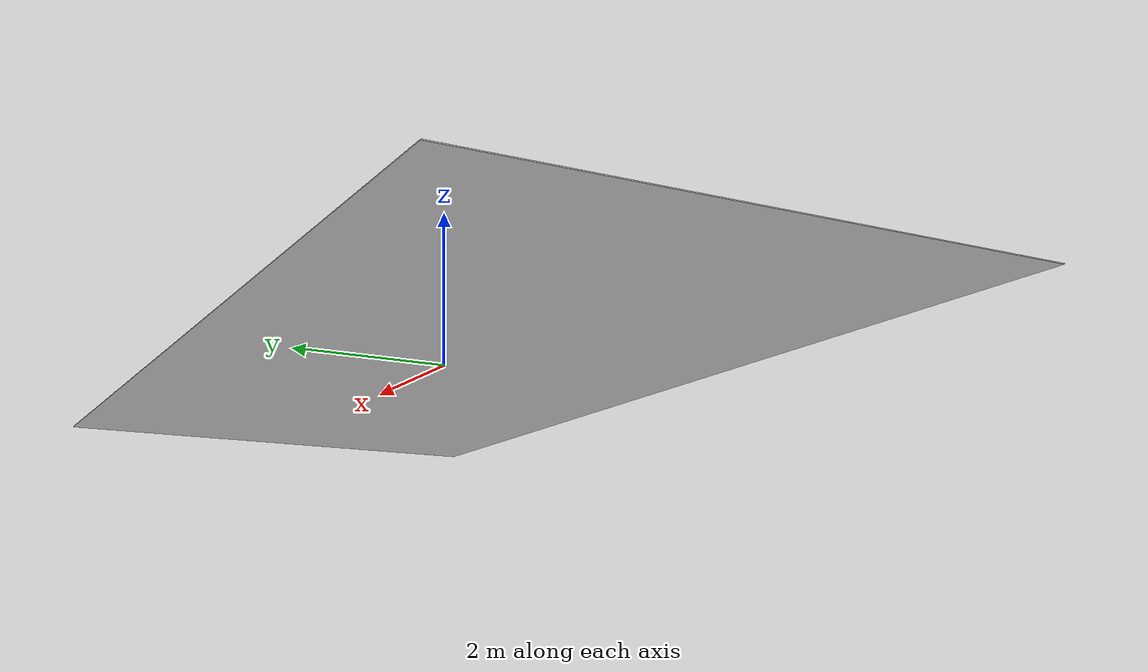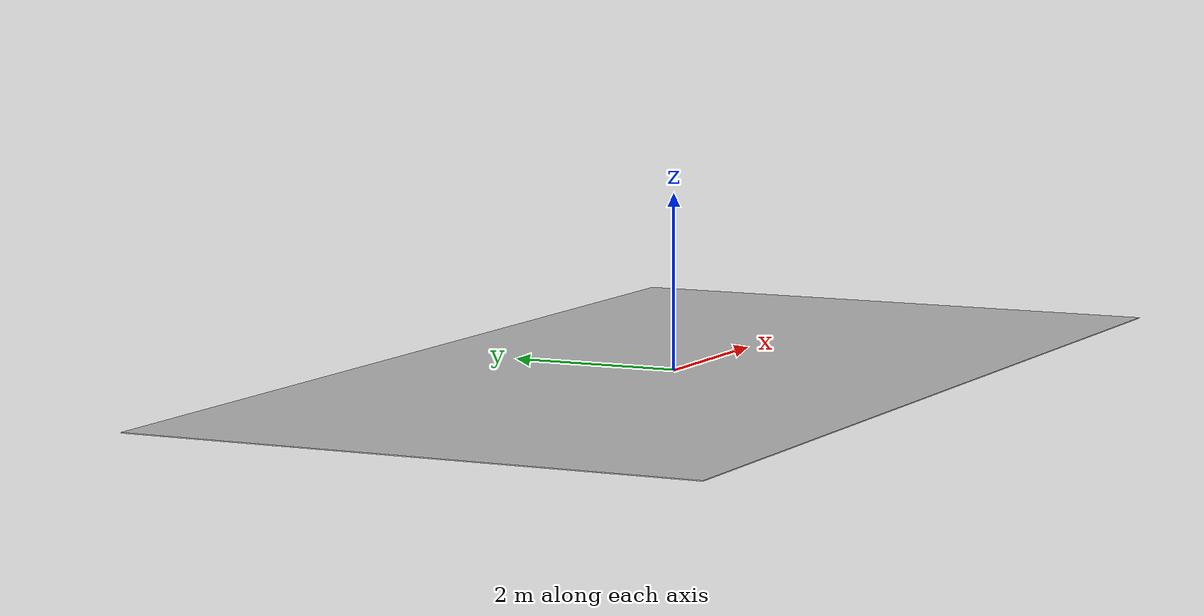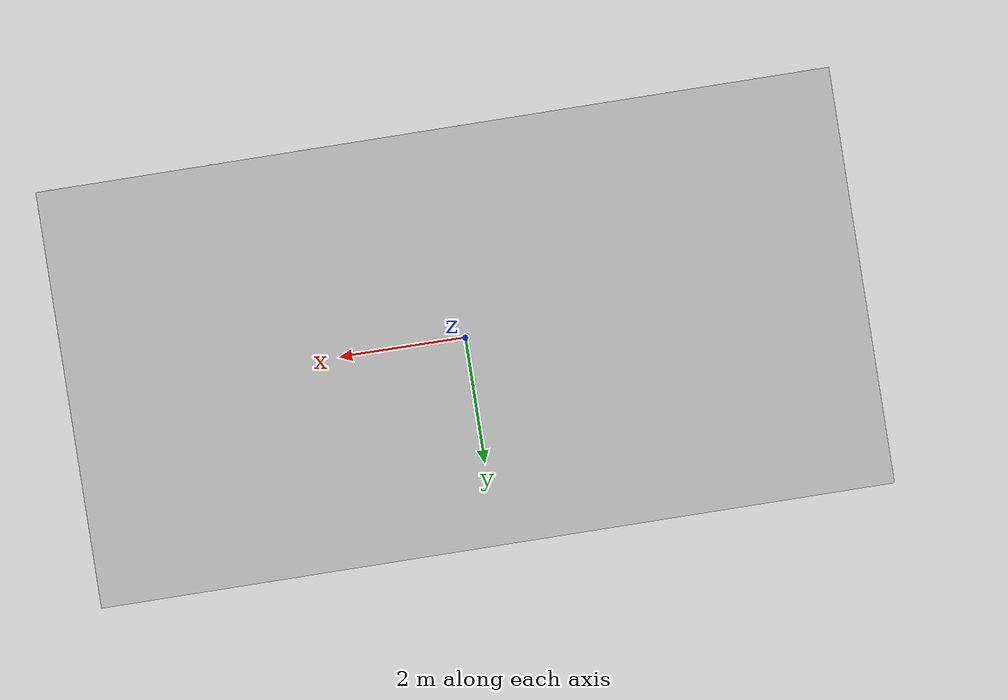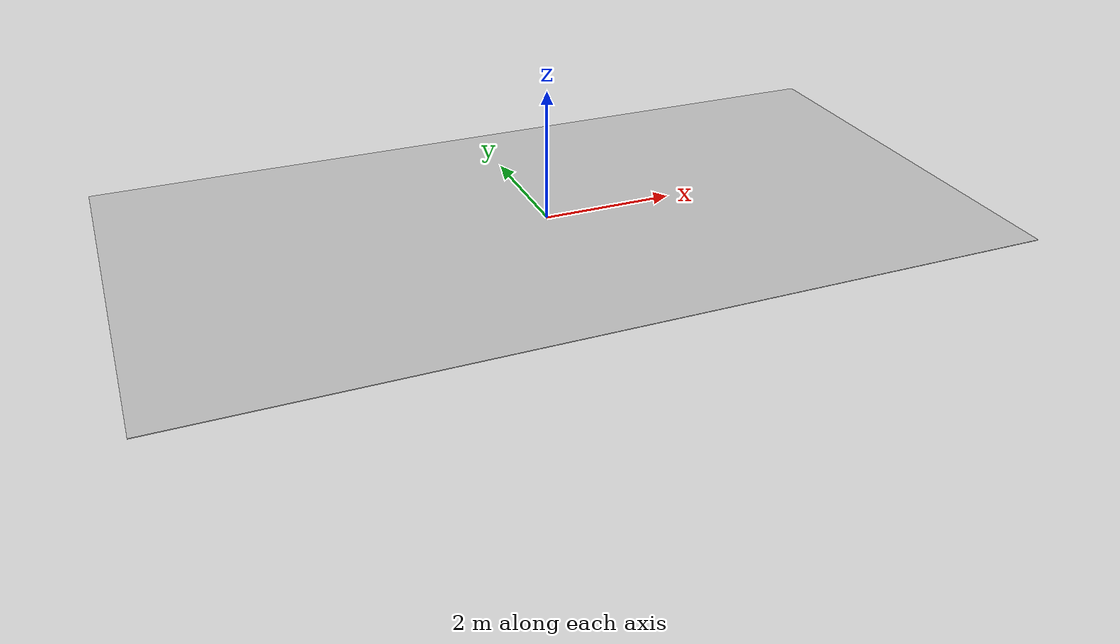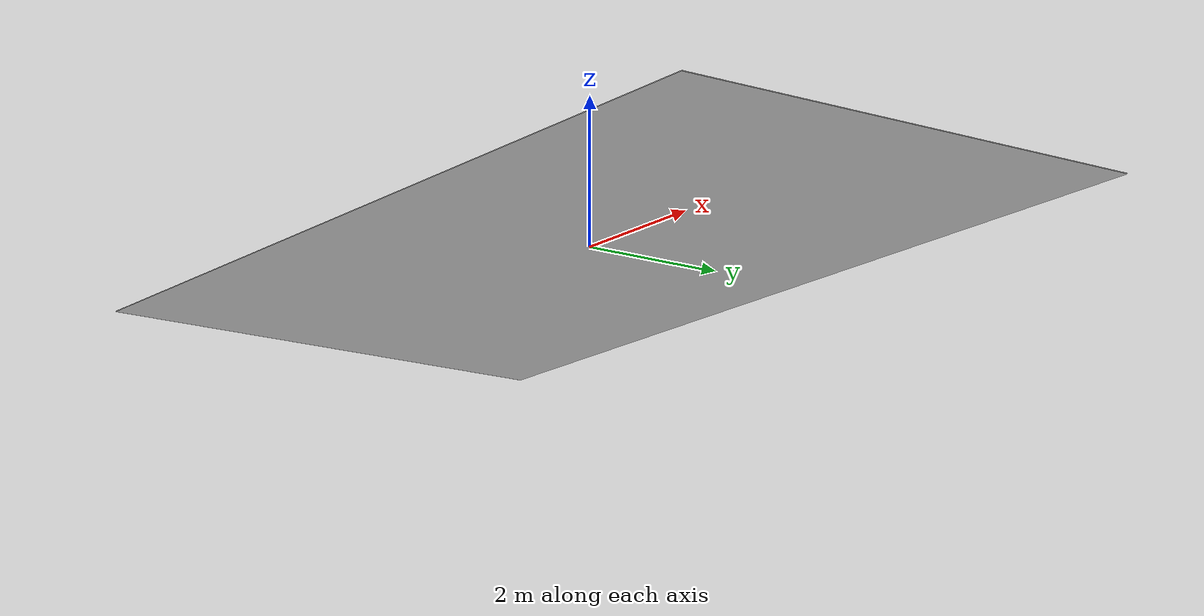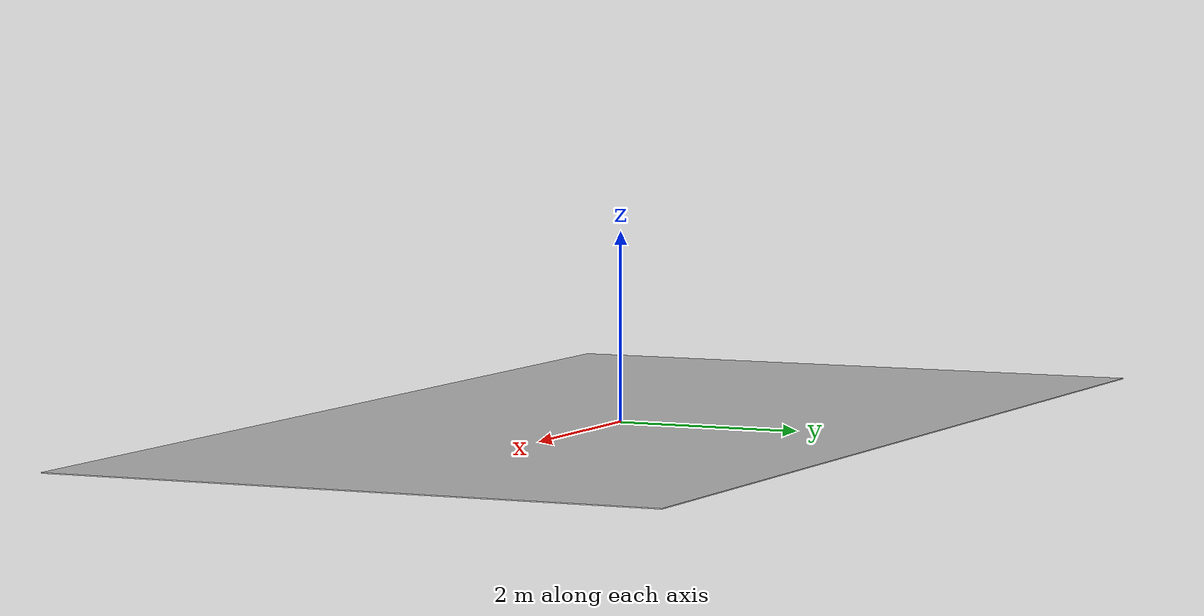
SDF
<?xml version='1.0'?>
<sdf version="1.6">
<model name="after_set_covering_route1_tougou">
  <pose>0 0 0 0 0 0</pose>
    <link name="link">
      <visual name="visual">
        <geometry>
          <box>
            <size>12.63 6.62 0.01</size>
          </box>
        </geometry>
	<material>
          <script>
            <uri>model://after_set_covering_route1_tougou/materials/after_set_covering_route1_tougou.material</uri>
            <name>after_set_covering_route1_tougou</name>
          </script>
        </material>
      </visual>
    </link>
    <static>1</static>
  </model>
</sdf>
